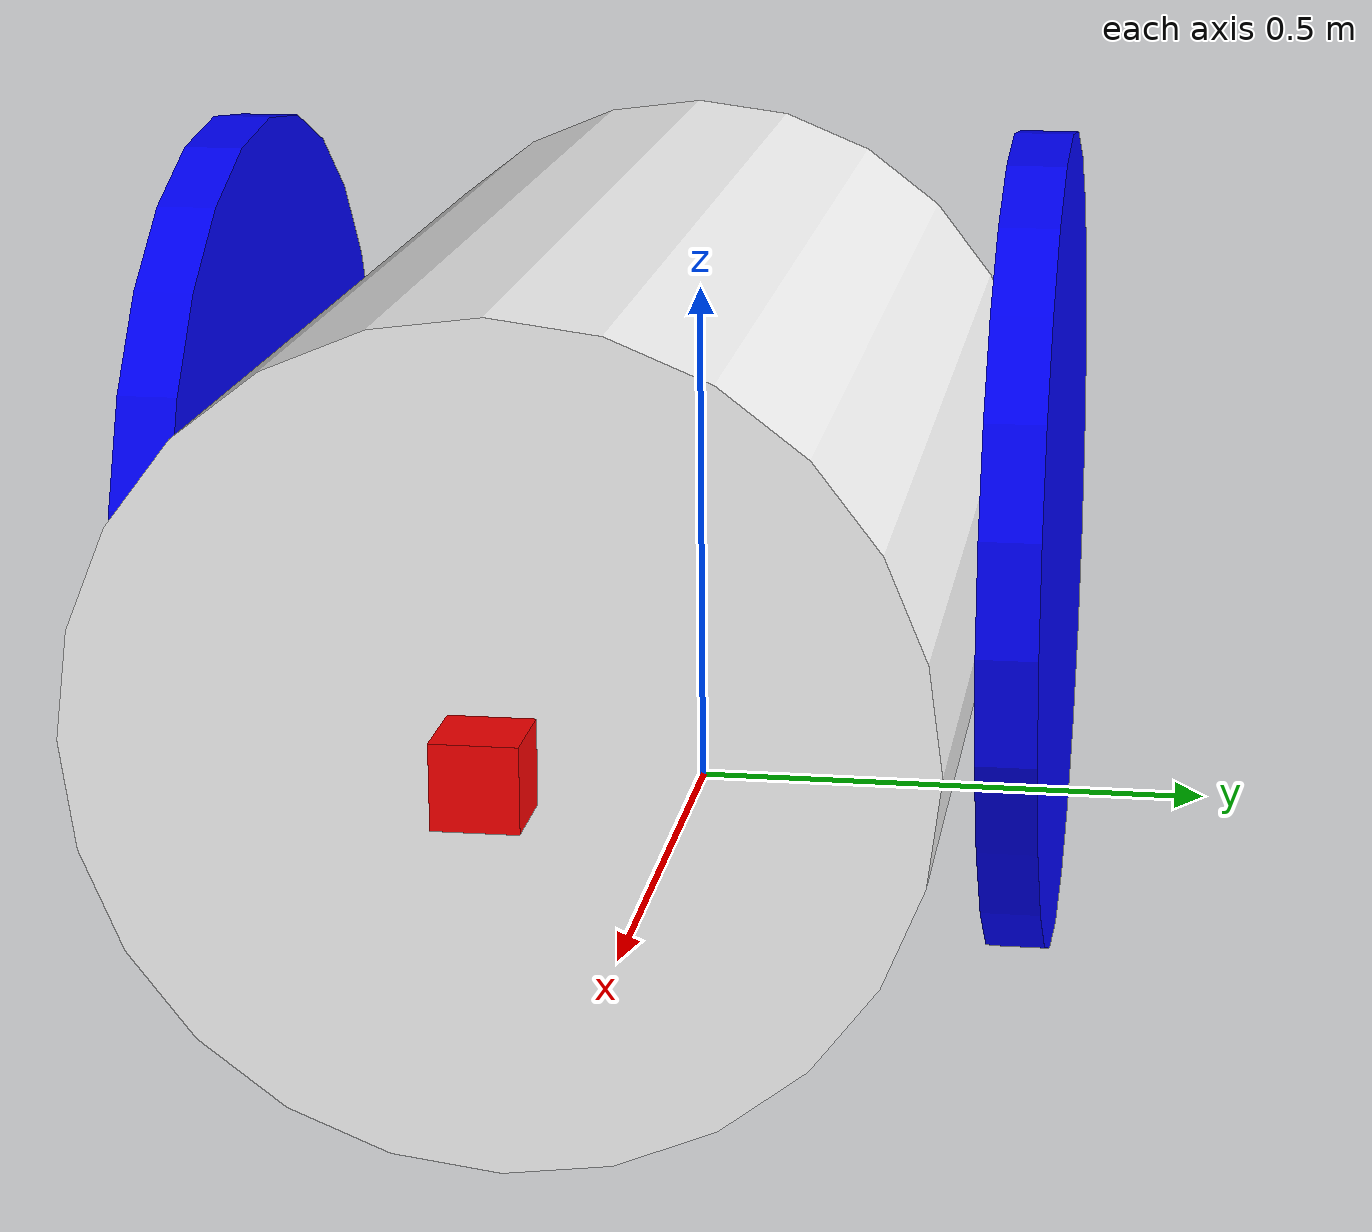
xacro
<?xml version="1.0"?>
<robot xmlns:xacro="http://www.ros.org/wiki/xacro" >

    <!-- INERTIAL SETTINGS -->
    <xacro:include filename="inertial_macros.xacro"/>

    <!-- CAMERA PARAMETERS -->
    <xacro:include filename="rgb_camera.xacro"/>

    <!-- COLORS -->
    <material name="white">
        <color rgba="1 1 1 1" />
    </material>

    <material name="orange">
        <color rgba="1 0.3 0.1 1"/>
    </material>

    <material name="blue">
        <color rgba="0 0 1 1"/>
    </material>

    <material name="black">
        <color rgba="0 0 0 1"/>
    </material>

    <material name="red">
        <color rgba="1 0 0 1"/>
    </material>

    <!-- BASE LINK -->
    <link name="base_link"/>

    <!-- DEFINE PARAMETERS -->
    <xacro:property name="chassis_radius" value="0.0065"/>
    <xacro:property name="chassis_length" value="0.02"/>
    <xacro:property name="wheel_radius" value="0.008"/>
    <xacro:property name="wheel_length" value="0.001"/>
    <xacro:property name="chassis_mass" value="0.002"/>
    <xacro:property name="wheel_mass" value="0.001"/>
    <xacro:property name="caster_wheel_mass" value="0.01"/>

    <!-- Update All Parameters from a Single Parameter -->
    <xacro:property name="scale" value="50.0"/>
    <xacro:property name="scaled_chassis_radius" value="${chassis_radius * scale}"/>
    <xacro:property name="scaled_chassis_length" value="${chassis_length * scale}"/>
    <xacro:property name="scaled_wheel_radius" value="${scaled_chassis_radius * 1.1}"/>
    <xacro:property name="scaled_wheel_length" value="${wheel_length * scale}"/>
    <xacro:property name="scaled_chassis_mass" value="${chassis_mass * scale}"/>
    <xacro:property name="scaled_wheel_mass" value="${wheel_mass * scale}"/>
    <xacro:property name="scaled_caster_wheel_mass" value="${caster_wheel_mass * scale}"/>
    <xacro:property name="scaled_camera_length" value="${scaled_chassis_radius / 5}"/>

    <!-- CHASSIS LINK -->
    <joint name="chassis_joint" type="fixed">
        <parent link="base_link"/>
        <child link="chassis"/>
        <origin xyz="${scaled_chassis_length / 2} 0 ${scaled_wheel_radius}" rpy="0 0 0"/>
    </joint>

    <link name="chassis">
        <visual>
            <origin xyz="0 0 0" rpy="0 ${pi/2} 0"/>
            <geometry>
                <cylinder radius="${scaled_chassis_radius}" length="${scaled_chassis_length}"/>
            </geometry>
            <material name="white"/>
        </visual>
        <collision>
            <origin xyz="0 0 0" rpy="0 ${pi/2} 0"/>
            <geometry>
                <cylinder radius="${scaled_chassis_radius}" length="${scaled_chassis_length}"/>
            </geometry>
        </collision>
        <xacro:inertial_cylinder mass="${scaled_chassis_mass}" radius="${scaled_chassis_radius}" length="${scaled_chassis_length}">
            <origin xyz="0 0 0" rpy="0 ${pi/2} 0"/>
        </xacro:inertial_cylinder>
    </link>

    <gazebo reference="chassis">
        <material>Gazebo/White</material>
    </gazebo>

    <!-- LEFT WHEEL LINK -->
    <joint name="left_wheel_joint" type="continuous">
        <parent link="base_link"/>
        <child link="left_wheel"/>
        <origin xyz="${scaled_wheel_radius} ${scaled_chassis_radius} ${scaled_wheel_radius}" rpy="-${pi/2} 0 0" />
        <axis xyz="0 0 1"/>
    </joint>

    <link name="left_wheel">
        <visual>
            <origin xyz="0 0 ${scaled_wheel_length / 2}" rpy="0 0 0"/>
            <geometry>
                <cylinder radius="${scaled_wheel_radius}" length="${scaled_wheel_length}"/>
            </geometry>
            <material name="blue"/>
        </visual>
        <collision>
            <origin xyz="0 0 ${scaled_wheel_length / 2}" rpy="0 0 0"/>
            <geometry>
                <cylinder radius="${scaled_wheel_radius}" length="${scaled_wheel_length}"/>
            </geometry>
        </collision>
        <xacro:inertial_cylinder mass="${scaled_wheel_mass}" radius="${scaled_wheel_radius}" length="${scaled_wheel_length}">
            <origin xyz="0 0 ${scaled_wheel_length / 2}" rpy="0 0 0"/>
        </xacro:inertial_cylinder>
    </link>

    <gazebo reference="left_wheel">
        <material>Gazebo/Blue</material>
    </gazebo>

    <!-- RIGHT WHEEL LINK -->
    <joint name="right_wheel_joint" type="continuous">
        <parent link="base_link"/>
        <child link="right_wheel"/>
        <origin xyz="${scaled_wheel_radius} -${scaled_chassis_radius} ${scaled_wheel_radius}" rpy="${pi/2} 0 0" />
        <axis xyz="0 0 -1"/>
    </joint>

    <link name="right_wheel">
        <visual>
            <origin xyz="0 0 ${scaled_wheel_length / 2}" rpy="0 0 0"/>
            <geometry>
                <cylinder radius="${scaled_wheel_radius}" length="${scaled_wheel_length}"/>
            </geometry>
            <material name="blue"/>
        </visual>
        <collision>
            <origin xyz="0 0 ${scaled_wheel_length / 2}" rpy="0 0 0"/>
            <geometry>
                <cylinder radius="${scaled_wheel_radius}" length="${scaled_wheel_length}"/>
            </geometry>
        </collision>
        <xacro:inertial_cylinder mass="${scaled_wheel_mass}" radius="${scaled_wheel_radius}" length="${scaled_wheel_length}">
            <origin xyz="0 0 ${scaled_wheel_length / 2}" rpy="0 0 0"/>
        </xacro:inertial_cylinder>
    </link>

    <gazebo reference="right_wheel">
        <material>Gazebo/Blue</material>
    </gazebo>

    <!-- CASTER WHEEL LINK -->
    <joint name="caster_wheel_joint" type="fixed">
        <parent link="chassis"/>
        <child link="caster_wheel"/>
        <origin xyz="${scaled_chassis_length / 4} 0 -${scaled_wheel_radius / 2}" rpy="0 0 0"/>
    </joint>

    <link name="caster_wheel">
        <visual>
            <geometry>
                <sphere radius="${scaled_wheel_radius / 2}"/>
            </geometry>
            <material name="black"/>
        </visual>
        <collision>
            <geometry>
                <sphere radius="${scaled_wheel_radius / 2}"/>
            </geometry>
        </collision>
        <xacro:inertial_sphere mass="${scaled_caster_wheel_mass}" radius="${scaled_wheel_radius / 2}">
            <origin xyz="0 0 0" rpy="0 0 0"/>
        </xacro:inertial_sphere>
    </link>

    <gazebo reference="caster_wheel">
        <material>Gazebo/Black</material>
        <mu1 value="0.001"/>
        <mu2 value="0.001"/>
    </gazebo>

    <!-- CAMERA -->
    <joint name="camera_joint" type="fixed">
        <parent link="chassis"/>
        <child link="camera_link"/>
        <origin xyz="${scaled_chassis_length / 2} 0 0" rpy="0 0 0"/>
    </joint>

    <link name="camera_link">
        <visual>
            <origin xyz="${scaled_camera_length / 2} 0 0" rpy="0 0 0"/>
            <geometry>
                <box size="${scaled_camera_length} ${scaled_camera_length} ${scaled_camera_length}"/>
            </geometry>
            <material name="red"/>
        </visual>
        <collision>
            <origin xyz="${scaled_camera_length / 2} 0 0" rpy="0 0 0"/>
            <geometry>
                <box size="${scaled_camera_length} ${scaled_camera_length} ${scaled_camera_length}"/>
            </geometry>
        </collision>
    </link>

    <joint name="camera_optical_joint" type="fixed">
        <parent link="camera_link"/>
        <child link="camera_optical_link"/>
        <origin xyz="0 0 0" rpy="${-pi/2} 0 ${-pi/2}"/>
    </joint>

    <link name="camera_optical_link"/>

</robot>

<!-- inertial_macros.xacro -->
<robot xmlns:xacro="http://www.ros.org/wiki/xacro" name="colonoscopy">

    <!-- Specify some standard inertial calculations https://en.wikipedia.org/wiki/List_of_moments_of_inertia -->
    <!-- These make use of xacro's mathematical functionality -->

    <xacro:macro name="inertial_sphere" params="mass radius *origin">
        <inertial>
            <xacro:insert_block name="origin"/>
            <mass value="${mass}" />
            <inertia ixx="${(2/5) * mass * (radius*radius)}" ixy="0.0" ixz="0.0"
                    iyy="${(2/5) * mass * (radius*radius)}" iyz="0.0"
                    izz="${(2/5) * mass * (radius*radius)}" />
        </inertial>
    </xacro:macro>

    <xacro:macro name="inertial_box" params="mass x y z *origin">
        <inertial>
            <xacro:insert_block name="origin"/>
            <mass value="${mass}" />
            <inertia ixx="${(1/12) * mass * (y*y+z*z)}" ixy="0.0" ixz="0.0"
                    iyy="${(1/12) * mass * (x*x+z*z)}" iyz="0.0"
                    izz="${(1/12) * mass * (x*x+y*y)}" />
        </inertial>
    </xacro:macro>

    <xacro:macro name="inertial_cylinder" params="mass length radius *origin">
        <inertial>
            <xacro:insert_block name="origin"/>
            <mass value="${mass}" />
            <inertia ixx="${(1/12) * mass * (3*radius*radius + length*length)}" ixy="0.0" ixz="0.0"
                    iyy="${(1/12) * mass * (3*radius*radius + length*length)}" iyz="0.0"
                    izz="${(1/2) * mass * (radius*radius)}" />
        </inertial>
    </xacro:macro>

</robot>
